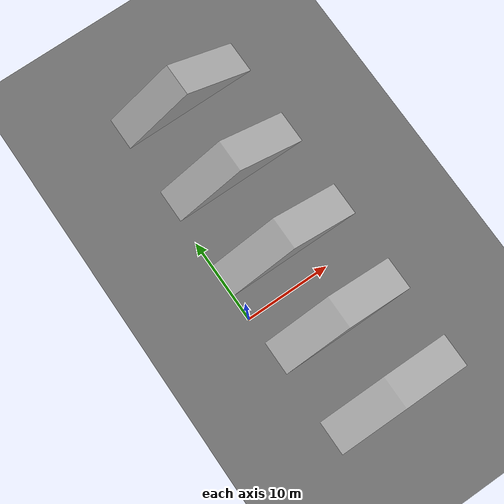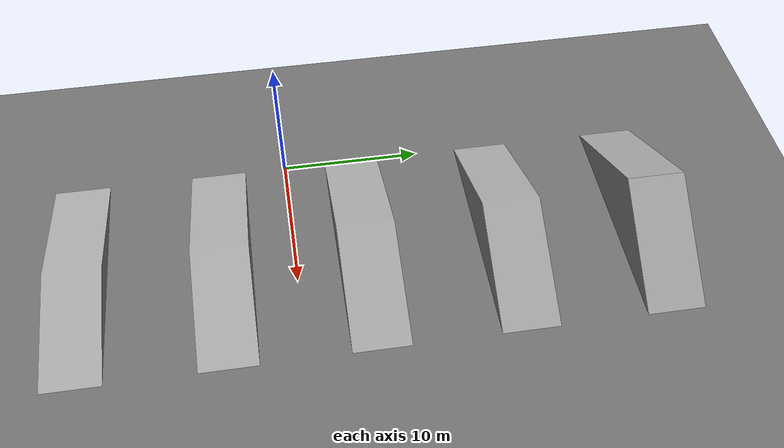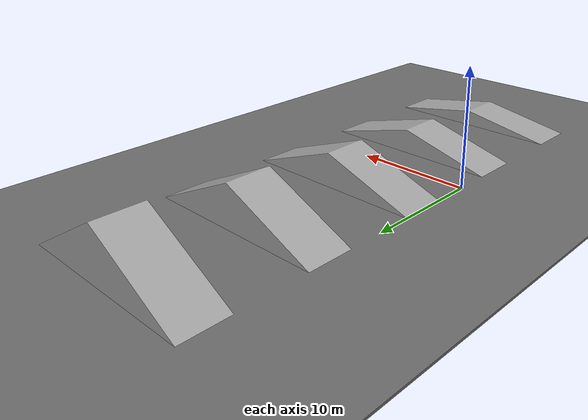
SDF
<sdf version="1.10">
 <world name="nomad_forest">
  <model name="test_flat_ground">
   <static>true</static>
   <link name="ground">
    <pose>0 0 -0.1 0 0 0</pose>
    <visual name="visual">
     <geometry><box><size>120.0 90.0 0.2</size></box></geometry>
     <material>
      <ambient>0.42 0.42 0.42 1</ambient>
      <diffuse>0.42 0.42 0.42 1</diffuse>
      <specular>0.05 0.05 0.05 1</specular>
     </material>
    </visual>
    <collision name="collision">
     <geometry><box><size>120.0 90.0 0.2</size></box></geometry>
     <surface><friction><ode><mu>1.0</mu><mu2>1.0</mu2></ode></friction></surface>
    </collision>
   </link>
  </model>
  <model name="ramp_10_deg">
   <static>true</static>
   <pose>0.0 -15.0 0 0 0 0</pose>
   <link name="ramp">
    <visual name="visual">
     <geometry><mesh><uri>../assets/geometry/ramp_10_deg.obj</uri><scale>1 1 1</scale></mesh></geometry>
     <material>
      <ambient>0.64 0.64 0.64 1</ambient>
      <diffuse>0.64 0.64 0.64 1</diffuse>
      <specular>0.05 0.05 0.05 1</specular>
     </material>
    </visual>
    <collision name="collision">
     <geometry><mesh><uri>../assets/geometry/ramp_10_deg.obj</uri><scale>1 1 1</scale></mesh></geometry>
     <surface><friction><ode><mu>1.0</mu><mu2>1.0</mu2></ode></friction></surface>
    </collision>
   </link>
  </model>
  <model name="ramp_15_deg">
   <static>true</static>
   <pose>0.0 -5.0 0 0 0 0</pose>
   <link name="ramp">
    <visual name="visual">
     <geometry><mesh><uri>../assets/geometry/ramp_15_deg.obj</uri><scale>1 1 1</scale></mesh></geometry>
     <material>
      <ambient>0.64 0.64 0.64 1</ambient>
      <diffuse>0.64 0.64 0.64 1</diffuse>
      <specular>0.05 0.05 0.05 1</specular>
     </material>
    </visual>
    <collision name="collision">
     <geometry><mesh><uri>../assets/geometry/ramp_15_deg.obj</uri><scale>1 1 1</scale></mesh></geometry>
     <surface><friction><ode><mu>1.0</mu><mu2>1.0</mu2></ode></friction></surface>
    </collision>
   </link>
  </model>
  <model name="ramp_20_deg">
   <static>true</static>
   <pose>0.0 5.0 0 0 0 0</pose>
   <link name="ramp">
    <visual name="visual">
     <geometry><mesh><uri>../assets/geometry/ramp_20_deg.obj</uri><scale>1 1 1</scale></mesh></geometry>
     <material>
      <ambient>0.64 0.64 0.64 1</ambient>
      <diffuse>0.64 0.64 0.64 1</diffuse>
      <specular>0.05 0.05 0.05 1</specular>
     </material>
    </visual>
    <collision name="collision">
     <geometry><mesh><uri>../assets/geometry/ramp_20_deg.obj</uri><scale>1 1 1</scale></mesh></geometry>
     <surface><friction><ode><mu>1.0</mu><mu2>1.0</mu2></ode></friction></surface>
    </collision>
   </link>
  </model>
  <model name="ramp_25_deg">
   <static>true</static>
   <pose>0.0 15.0 0 0 0 0</pose>
   <link name="ramp">
    <visual name="visual">
     <geometry><mesh><uri>../assets/geometry/ramp_25_deg.obj</uri><scale>1 1 1</scale></mesh></geometry>
     <material>
      <ambient>0.64 0.64 0.64 1</ambient>
      <diffuse>0.64 0.64 0.64 1</diffuse>
      <specular>0.05 0.05 0.05 1</specular>
     </material>
    </visual>
    <collision name="collision">
     <geometry><mesh><uri>../assets/geometry/ramp_25_deg.obj</uri><scale>1 1 1</scale></mesh></geometry>
     <surface><friction><ode><mu>1.0</mu><mu2>1.0</mu2></ode></friction></surface>
    </collision>
   </link>
  </model>
  <model name="ramp_30_deg">
   <static>true</static>
   <pose>0.0 25.0 0 0 0 0</pose>
   <link name="ramp">
    <visual name="visual">
     <geometry><mesh><uri>../assets/geometry/ramp_30_deg.obj</uri><scale>1 1 1</scale></mesh></geometry>
     <material>
      <ambient>0.64 0.64 0.64 1</ambient>
      <diffuse>0.64 0.64 0.64 1</diffuse>
      <specular>0.05 0.05 0.05 1</specular>
     </material>
    </visual>
    <collision name="collision">
     <geometry><mesh><uri>../assets/geometry/ramp_30_deg.obj</uri><scale>1 1 1</scale></mesh></geometry>
     <surface><friction><ode><mu>1.0</mu><mu2>1.0</mu2></ode></friction></surface>
    </collision>
   </link>
  </model>
 </world>
</sdf>
